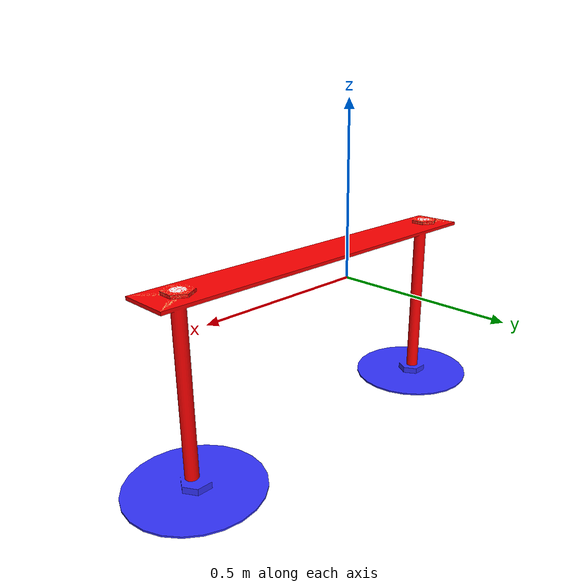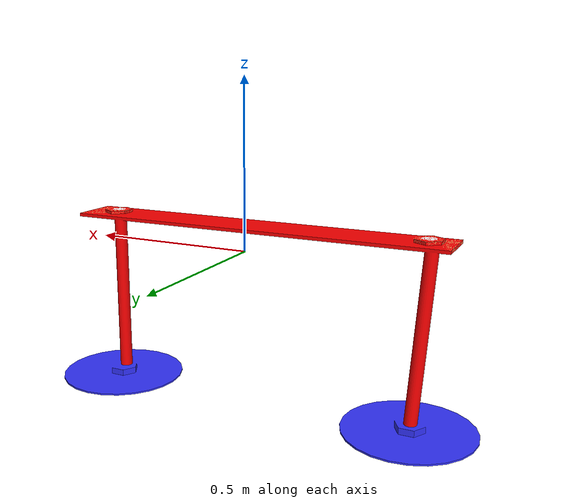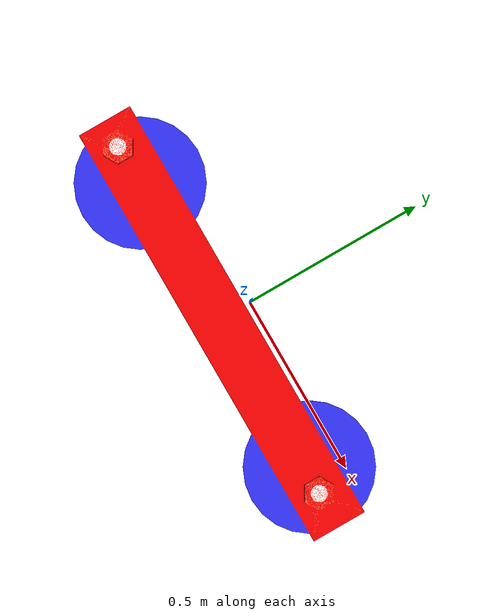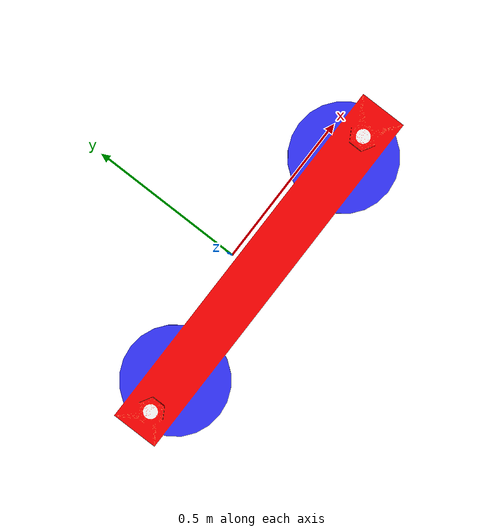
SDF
<?xml version="1.0" ?>
<sdf version="1.5">
  <model name="Path">
    <static>0</static>
    <link name="path_link">
      <inertial>
        <pose>0.0 0.0 0.0 0.0 0.0 0.0</pose>
        <mass> 3.0 </mass>
        <inertia>
          <ixx> 0.0</ixx>
          <ixy> 0.0 </ixy>
          <ixz> 0.0 </ixz>
          <iyy> 0.0 </iyy>
          <iyz> 0.0 </iyz>
          <izz> 0.0 </izz>
        </inertia>
      </inertial>
      <collision name="collision">
        <geometry>
          <mesh>
            <uri>model://path/meshes/path.dae</uri>
          </mesh>
        </geometry>
      </collision>
      <visual name="visual">
        <geometry>
          <mesh>
            <uri>model://path/meshes/path.dae</uri>
          </mesh>
        </geometry>
      </visual>
    </link>
  </model>
</sdf>
